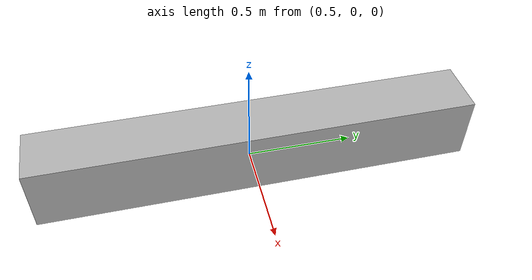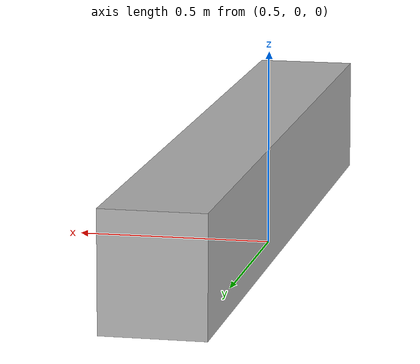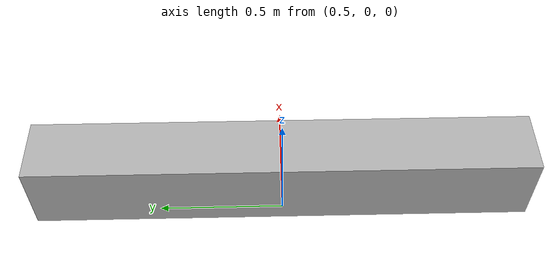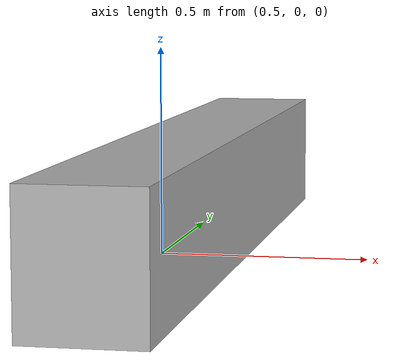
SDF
<?xml version="1.0"?>
<sdf version="1.4">

  <model name="box">
    <static>true</static>
    <link name='box'>
      <pose>0.58 0 0.15 0 0 0</pose>
      <collision name='collision'>
        <geometry>
          <box>
            <size>0.26 2.0 0.3</size>
          </box>
        </geometry>
      </collision>
      <visual name='visual'>
        <geometry>
          <box>
            <size>0.26 2.0 0.3</size>
          </box>
        </geometry>
      </visual>
    </link>
  </model>

</sdf>
